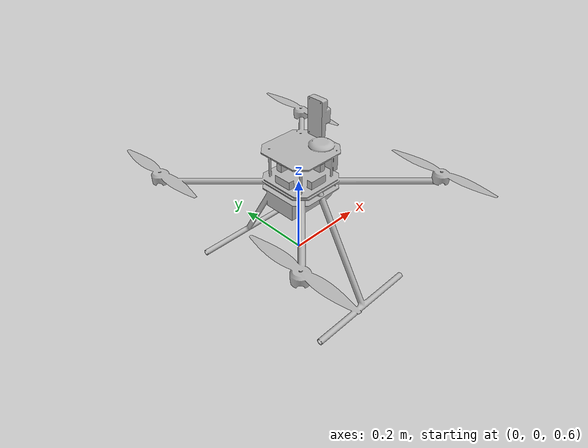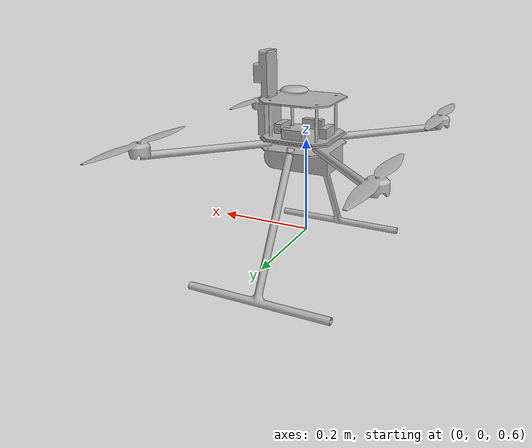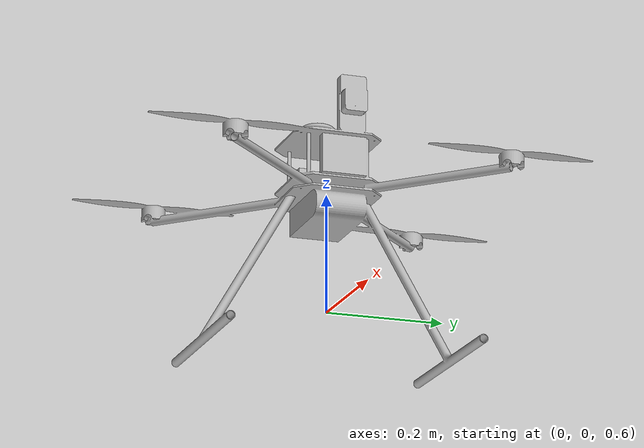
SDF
<?xml version="1.0" encoding="UTF-8"?>
<sdf version='1.9'>
  <model name='sr04_base'>
    <pose>0 0 0.5 0 0 0</pose>
    <self_collide>false</self_collide>
    <static>false</static>
    <link name="base_link">
      <inertial>
        <pose>0.006 0 0.019 0 0 0</pose>
        <mass>2.1</mass>
        <inertia>
          <ixx>0.061</ixx>
          <ixy>0</ixy>
          <ixz>0</ixz>
          <iyy>0.06</iyy>
          <iyz>0</iyz>
          <izz>0.1</izz>
        </inertia>
      </inertial>
      <gravity>true</gravity>
      <velocity_decay />
      <visual name="drone_visual">
        <pose>0.006 0 0.025 0 0 0</pose>
        <geometry>
          <mesh>
            <uri>model://sr04_base/meshes/SR04_drone.STL</uri>
            <scale>1 1 1</scale>
          </mesh>
        </geometry>
      </visual>
      <collision name="body_collision">
        <geometry>
          <box>
            <size>1.2 1.2 0.4</size>
          </box>
        </geometry>
      </collision>
      <sensor name="air_pressure_sensor" type="air_pressure">
        <always_on>1</always_on>
        <update_rate>50</update_rate>
        <air_pressure>
          <!-- Noise modeled after BMP390 -->
          <pressure>
            <noise type="gaussian">
              <mean>0</mean>
              <stddev>3</stddev>
            </noise>
          </pressure>
        </air_pressure>
      </sensor>
      <sensor name="magnetometer_sensor" type="magnetometer">
        <always_on>1</always_on>
        <update_rate>100</update_rate>
        <magnetometer>
          <x>
            <noise type="gaussian">
              <stddev>0.0001</stddev>
            </noise>
          </x>
          <y>
            <noise type="gaussian">
              <stddev>0.0001</stddev>
            </noise>
          </y>
          <z>
            <noise type="gaussian">
              <stddev>0.0001</stddev>
            </noise>
          </z>
        </magnetometer>
      </sensor>
      <sensor name="imu_sensor" type="imu">
        <always_on>1</always_on>
        <update_rate>250</update_rate>
        <imu>
          <angular_velocity>
            <!-- Noise modeled after IIM42653 -->
            <!-- 0.05 deg/s converted to rad/s -->
            <x>
              <noise type="gaussian">
                <mean>0.0</mean>
                <stddev>0.0008726646</stddev>
              </noise>
            </x>
            <y>
              <noise type="gaussian">
                <mean>0.0</mean>
                <stddev>0.0008726646</stddev>
              </noise>
            </y>
            <z>
              <noise type="gaussian">
                <mean>0.0</mean>
                <stddev>0.0008726646</stddev>
              </noise>
            </z>
          </angular_velocity>
          <linear_acceleration>
            <!-- Noise modeled after IIM42653 -->
            <!-- X & Y axis: 0.65 mg-rms converted to m/ss -->
            <x>
              <noise type="gaussian">
                <mean>0.0</mean>
                <stddev>0.00637</stddev>
              </noise>
            </x>
            <y>
              <noise type="gaussian">
                <mean>0.0</mean>
                <stddev>0.00637</stddev>
              </noise>
            </y>
            <!-- Z axis: 0.70 mg-rms converted to m/ss-->
            <z>
              <noise type="gaussian">
                <mean>0.0</mean>
                <stddev>0.00686</stddev>
              </noise>
            </z>
          </linear_acceleration>
        </imu>
      </sensor>
      <sensor name="navsat_sensor" type="navsat">
        <always_on>1</always_on>
        <update_rate>30</update_rate>
      </sensor>
    </link>
    <link name="rotor_0">
      <gravity>true</gravity>
      <self_collide>false</self_collide>
      <velocity_decay />
      <!-- Correct position -->
      <pose>0.224 -0.235 0 0 0 0</pose>
      <inertial>
        <mass>0.13</mass>
        <inertia>
          <!-- Realistic inertia for 15" prop -->
          <ixx>1.7e-5</ixx>
          <iyy>0.0015</iyy>
          <izz>0.0015</izz>
          <ixy>0</ixy>
          <ixz>0</ixz>
          <iyz>0</iyz>
        </inertia>
      </inertial>
      <!-- Keep collision simple -->
      <collision name="rotor_0_collision">
        <pose>0 0 0 0 0 0</pose>
        <geometry>
          <cylinder>
            <radius>0.1905</radius>
            <length>0.005</length>
          </cylinder>
        </geometry>
      </collision>
    </link>
    <joint name="rotor_0_joint" type="revolute">
      <parent>base_link</parent>
      <child>rotor_0</child>
      <axis>
        <xyz>0 0 1</xyz>
        <limit>
          <lower>-1e+16</lower>
          <upper>1e+16</upper>
        </limit>
        <dynamics>
          <spring_reference>0</spring_reference>
          <spring_stiffness>0</spring_stiffness>
        </dynamics>
      </axis>
    </joint>
    <link name="rotor_1">
      <gravity>true</gravity>
      <self_collide>false</self_collide>
      <velocity_decay />

      <!-- Correct position -->
      <pose>-0.236 0.235 0 0 0 0</pose>

      <inertial>
        <mass>0.13</mass>
        <inertia>
          <!-- Realistic inertia for 36" prop -->
          <ixx>1.7e-5</ixx>
          <iyy>0.0015</iyy>
          <izz>0.0015</izz>
          <ixy>0</ixy>
          <ixz>0</ixz>
          <iyz>0</iyz>
        </inertia>
      </inertial>

      <!-- Better collision shape -->
      <collision name="rotor_1_collision">
        <pose>0 0 0 0 0 0</pose>
        <geometry>
          <cylinder>
            <radius>0.1905</radius>
            <length>0.005</length>
          </cylinder>
        </geometry>
      </collision>
    </link>

    <joint name="rotor_1_joint" type="revolute">
      <parent>base_link</parent>
      <child>rotor_1</child>
      <axis>
        <xyz>0 0 1</xyz>
        <limit>
          <lower>-1e+16</lower>
          <upper>1e+16</upper>
        </limit>
        <dynamics>
          <spring_reference>0</spring_reference>
          <spring_stiffness>0</spring_stiffness>
        </dynamics>
      </axis>
    </joint>
    <link name="rotor_2">
      <gravity>true</gravity>
      <self_collide>false</self_collide>
      <velocity_decay />

      <!-- Correct position -->
      <pose>0.224 0.235 0 0 0 0</pose>

      <inertial>
        <mass>0.13</mass>
        <inertia>
          <!-- Realistic inertia for 36" prop -->
          <ixx>1.7e-5</ixx>
          <iyy>0.0015</iyy>
          <izz>0.0015</izz>
          <ixy>0</ixy>
          <ixz>0</ixz>
          <iyz>0</iyz>
        </inertia>
      </inertial>

      <!-- Better collision model -->
      <collision name="rotor_2_collision">
        <pose>0 0 0 0 0 0</pose>
        <geometry>
          <cylinder>
            <radius>0.1905</radius>
            <length>0.005</length>
          </cylinder>
        </geometry>
      </collision>
    </link>

    <joint name="rotor_2_joint" type="revolute">
      <parent>base_link</parent>
      <child>rotor_2</child>
      <axis>
        <xyz>0 0 1</xyz>
        <limit>
          <lower>-1e+16</lower>
          <upper>1e+16</upper>
        </limit>
        <dynamics>
          <spring_reference>0</spring_reference>
          <spring_stiffness>0</spring_stiffness>
        </dynamics>
      </axis>
    </joint>
    <link name="rotor_3">
      <gravity>true</gravity>
      <self_collide>false</self_collide>
      <velocity_decay />

      <!-- Correct position -->
      <pose>-0.236 -0.235 0 0 0 0</pose>

      <inertial>
        <mass>0.13</mass>
        <inertia>
          <!-- Realistic inertia for 15" prop -->
          <ixx>1.7e-5</ixx>
          <iyy>0.0015</iyy>
          <izz>0.0015</izz>
          <ixy>0</ixy>
          <ixz>0</ixz>
          <iyz>0</iyz>
        </inertia>
      </inertial>

      <!-- Proper prop disc collision -->
      <collision name="rotor_3_collision">
        <pose>0 0 0 0 0 0</pose>
        <geometry>
          <cylinder>
            <radius>0.1905</radius>
            <length>0.005</length>
          </cylinder>
        </geometry>
      </collision>
    </link>

    <joint name="rotor_3_joint" type="revolute">
      <parent>base_link</parent>
      <child>rotor_3</child>
      <axis>
        <xyz>0 0 1</xyz>
        <limit>
          <lower>-1e+16</lower>
          <upper>1e+16</upper>
        </limit>
        <dynamics>
          <spring_reference>0</spring_reference>
          <spring_stiffness>0</spring_stiffness>
        </dynamics>
      </axis>
    </joint>
  </model>
</sdf>
